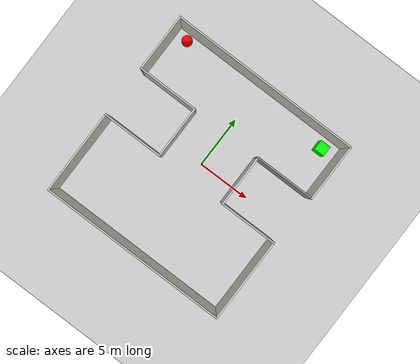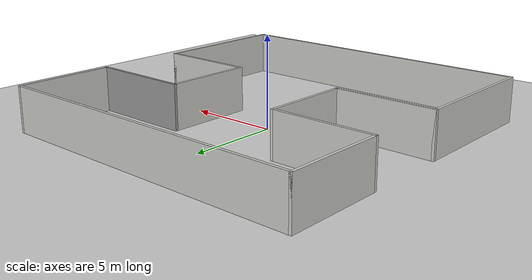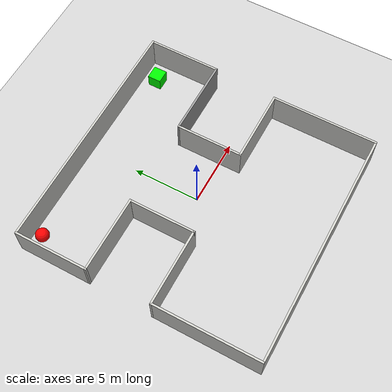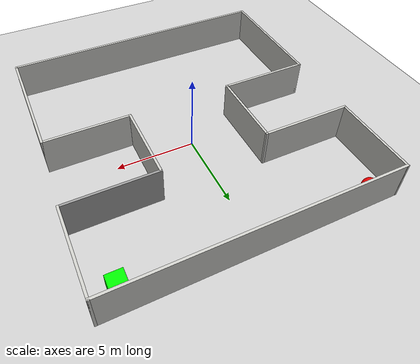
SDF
<sdf version="1.7">
 <world name="default">
  <light name="sun" type="directional">
   <pose>0 0 10 0 -0 0</pose>
   <diffuse>0.8 0.8 0.8 1</diffuse>
   <specular>0.2 0.2 0.2 1</specular>
   <attenuation>
    <range>1000</range>
    <constant>0.9</constant>
    <linear>0.01</linear>
    <quadratic>0.001</quadratic>
   </attenuation>
   <direction>-0.5 0.1 -0.9</direction>
   <spot><inner_angle>0</inner_angle><outer_angle>0</outer_angle><falloff>0</falloff></spot>
  </light>
  <model name="ground_plane">
   <static>1</static>
   <link name="link">
    <collision name="collision">
     <geometry><plane><normal>0 0 1</normal><size>100 100</size></plane></geometry>
     <surface>
      <contact><collide_bitmask>65535</collide_bitmask></contact>
      <friction><ode><mu>100</mu><mu2>50</mu2></ode></friction>
     </surface>
    </collision>
    <visual name="visual">
     <cast_shadows>0</cast_shadows>
     <geometry><plane><normal>0 0 1</normal><size>100 100</size></plane></geometry>
     <material>
      <script><uri>file://media/materials/scripts/gazebo.material</uri><name>Gazebo/Grey</name></script>
     </material>
    </visual>
   </link>
  </model>
  <gravity>0 0 -9.8</gravity>
  <magnetic_field>6e-06 2.3e-05 -4.2e-05</magnetic_field>
  <atmosphere type="adiabatic"/>
  <physics type="ode">
   <max_step_size>0.001</max_step_size>
   <real_time_factor>1</real_time_factor>
   <real_time_update_rate>1000</real_time_update_rate>
  </physics>
  <scene><ambient>0.4 0.4 0.4 1</ambient><background>0.7 0.7 0.7 1</background><shadows>1</shadows></scene>
  <spherical_coordinates>
   <surface_model>EARTH_WGS84</surface_model>
   <latitude_deg>0</latitude_deg>
   <longitude_deg>0</longitude_deg>
   <elevation>0</elevation>
   <heading_deg>0</heading_deg>
  </spherical_coordinates>
  <model name="wide_room">
   <pose>0.075053 -0.383097 0 0 -0 0</pose>
   <link name="Wall_11">
    <collision name="Wall_11_Collision">
     <geometry><box><size>5.75 0.15 2.5</size></box></geometry>
     <pose>0 0 1.25 0 -0 0</pose>
    </collision>
    <visual name="Wall_11_Visual">
     <pose>0 0 1.25 0 -0 0</pose>
     <geometry><box><size>5.75 0.15 2.5</size></box></geometry>
     <material>
      <script><uri>file://media/materials/scripts/gazebo.material</uri><name>Gazebo/CeilingTiled</name></script>
      <ambient>1 1 1 1</ambient>
     </material>
     <meta><layer>0</layer></meta>
    </visual>
    <pose>-6.125 -1.175 0 0 -0 0</pose>
   </link>
   <link name="Wall_12">
    <collision name="Wall_12_Collision">
     <geometry><box><size>5 0.15 2.5</size></box></geometry>
     <pose>0 0 1.25 0 -0 0</pose>
    </collision>
    <visual name="Wall_12_Visual">
     <pose>0 0 1.25 0 -0 0</pose>
     <geometry><box><size>5 0.15 2.5</size></box></geometry>
     <material>
      <script><uri>file://media/materials/scripts/gazebo.material</uri><name>Gazebo/CeilingTiled</name></script>
      <ambient>1 1 1 1</ambient>
     </material>
     <meta><layer>0</layer></meta>
    </visual>
    <pose>-3.325 1.25 0 0 -0 1.5708</pose>
   </link>
   <link name="Wall_13">
    <collision name="Wall_13_Collision">
     <geometry><box><size>5.75 0.15 2.5</size></box></geometry>
     <pose>0 0 1.25 0 -0 0</pose>
    </collision>
    <visual name="Wall_13_Visual">
     <pose>0 0 1.25 0 -0 0</pose>
     <geometry><box><size>5.75 0.15 2.5</size></box></geometry>
     <material>
      <script><uri>file://media/materials/scripts/gazebo.material</uri><name>Gazebo/CeilingTiled</name></script>
      <ambient>1 1 1 1</ambient>
     </material>
     <meta><layer>0</layer></meta>
    </visual>
    <pose>-6.125 3.675 0 0 -0 3.14159</pose>
   </link>
   <link name="Wall_15">
    <collision name="Wall_15_Collision">
     <geometry><box><size>5.5 0.15 2.5</size></box></geometry>
     <pose>0 0 1.25 0 -0 0</pose>
    </collision>
    <visual name="Wall_15_Visual">
     <pose>0 0 1.25 0 -0 0</pose>
     <geometry><box><size>5.5 0.15 2.5</size></box></geometry>
     <material>
      <script><uri>file://media/materials/scripts/gazebo.material</uri><name>Gazebo/CeilingTiled</name></script>
      <ambient>1 1 1 1</ambient>
     </material>
     <meta><layer>0</layer></meta>
    </visual>
    <pose>-8.925 6.35 0 0 -0 1.5708</pose>
   </link>
   <link name="Wall_16">
    <collision name="Wall_16_Collision">
     <geometry><box><size>18 0.15 2.5</size></box></geometry>
     <pose>0 0 1.25 0 -0 0</pose>
    </collision>
    <visual name="Wall_16_Visual">
     <pose>0 0 1.25 0 -0 0</pose>
     <geometry><box><size>18 0.15 2.5</size></box></geometry>
     <material>
      <script><uri>file://media/materials/scripts/gazebo.material</uri><name>Gazebo/CeilingTiled</name></script>
      <ambient>1 1 1 1</ambient>
     </material>
     <meta><layer>0</layer></meta>
    </visual>
    <pose>0 9.025 0 0 -0 0</pose>
   </link>
   <link name="Wall_17">
    <collision name="Wall_17_Collision">
     <geometry><box><size>5.5 0.15 2.5</size></box></geometry>
     <pose>0 0 1.25 0 -0 0</pose>
    </collision>
    <visual name="Wall_17_Visual">
     <pose>0 0 1.25 0 -0 0</pose>
     <geometry><box><size>5.5 0.15 2.5</size></box></geometry>
     <material>
      <script><uri>file://media/materials/scripts/gazebo.material</uri><name>Gazebo/CeilingTiled</name></script>
      <ambient>1 1 1 1</ambient>
     </material>
     <meta><layer>0</layer></meta>
    </visual>
    <pose>8.925 6.35 0 0 -0 -1.5708</pose>
   </link>
   <link name="Wall_18">
    <collision name="Wall_18_Collision">
     <geometry><box><size>5.75 0.15 2.5</size></box></geometry>
     <pose>0 0 1.25 0 -0 0</pose>
    </collision>
    <visual name="Wall_18_Visual">
     <pose>0 0 1.25 0 -0 0</pose>
     <geometry><box><size>5.75 0.15 2.5</size></box></geometry>
     <material>
      <script><uri>file://media/materials/scripts/gazebo.material</uri><name>Gazebo/Grey</name></script>
      <ambient>1 1 1 1</ambient>
     </material>
     <meta><layer>0</layer></meta>
    </visual>
    <pose>6.125 3.675 0 0 -0 3.14159</pose>
   </link>
   <link name="Wall_19">
    <collision name="Wall_19_Collision">
     <geometry><box><size>5 0.15 2.5</size></box></geometry>
     <pose>0 0 1.25 0 -0 0</pose>
    </collision>
    <visual name="Wall_19_Visual">
     <pose>0 0 1.25 0 -0 0</pose>
     <geometry><box><size>5 0.15 2.5</size></box></geometry>
     <material>
      <script><uri>file://media/materials/scripts/gazebo.material</uri><name>Gazebo/CeilingTiled</name></script>
      <ambient>1 1 1 1</ambient>
     </material>
     <meta><layer>0</layer></meta>
    </visual>
    <pose>3.325 1.25 0 0 -0 -1.5708</pose>
   </link>
   <link name="Wall_20">
    <collision name="Wall_20_Collision">
     <geometry><box><size>5.5 0.15 2.5</size></box></geometry>
     <pose>0 0 1.25 0 -0 0</pose>
    </collision>
    <visual name="Wall_20_Visual">
     <pose>0 0 1.25 0 -0 0</pose>
     <geometry><box><size>5.5 0.15 2.5</size></box></geometry>
     <material>
      <script><uri>file://media/materials/scripts/gazebo.material</uri><name>Gazebo/CeilingTiled</name></script>
      <ambient>1 1 1 1</ambient>
     </material>
     <meta><layer>0</layer></meta>
    </visual>
    <pose>6 -1.175 0 0 -0 0</pose>
   </link>
   <link name="Wall_5">
    <collision name="Wall_5_Collision">
     <geometry><box><size>8 0.15 2.5</size></box></geometry>
     <pose>0 0 1.25 0 -0 0</pose>
    </collision>
    <visual name="Wall_5_Visual">
     <pose>0 0 1.25 0 -0 0</pose>
     <geometry><box><size>8 0.15 2.5</size></box></geometry>
     <material>
      <script><uri>file://media/materials/scripts/gazebo.material</uri><name>Gazebo/CeilingTiled</name></script>
      <ambient>1 1 1 1</ambient>
     </material>
     <meta><layer>0</layer></meta>
    </visual>
    <pose>-8.925 -5.1 0 0 -0 -1.5708</pose>
   </link>
   <link name="Wall_6">
    <collision name="Wall_6_Collision">
     <geometry><box><size>17.75 0.15 2.5</size></box></geometry>
     <pose>0 0 1.25 0 -0 0</pose>
    </collision>
    <visual name="Wall_6_Visual">
     <pose>0 0 1.25 0 -0 0</pose>
     <geometry><box><size>17.75 0.15 2.5</size></box></geometry>
     <material>
      <script><uri>file://media/materials/scripts/gazebo.material</uri><name>Gazebo/CeilingTiled</name></script>
      <ambient>1 1 1 1</ambient>
     </material>
     <meta><layer>0</layer></meta>
    </visual>
    <pose>-0.125 -9.025 0 0 -0 0</pose>
   </link>
   <link name="Wall_7">
    <collision name="Wall_7_Collision">
     <geometry><box><size>8 0.15 2.5</size></box></geometry>
     <pose>0 0 1.25 0 -0 0</pose>
    </collision>
    <visual name="Wall_7_Visual">
     <pose>0 0 1.25 0 -0 0</pose>
     <geometry><box><size>8 0.15 2.5</size></box></geometry>
     <material>
      <script><uri>file://media/materials/scripts/gazebo.material</uri><name>Gazebo/CeilingTiled</name></script>
      <ambient>1 1 1 1</ambient>
     </material>
     <meta><layer>0</layer></meta>
    </visual>
    <pose>8.675 -5.1 0 0 -0 1.5708</pose>
   </link>
   <static>1</static>
  </model>
  <model name="green_box">
   <link name="link">
    <inertial>
     <mass>1</mass>
     <inertia>
      <ixx>0.166667</ixx>
      <ixy>0</ixy>
      <ixz>0</ixz>
      <iyy>0.166667</iyy>
      <iyz>0</iyz>
      <izz>0.166667</izz>
     </inertia>
    </inertial>
    <visual name="visual">
     <geometry><box><size>1 1 1</size></box></geometry>
     <material>
      <script><name>Gazebo/Grey</name><uri>file://media/materials/scripts/gazebo.material</uri></script>
      <shader type="pixel"><normal_map>__default__</normal_map></shader>
      <diffuse>0 1 0 0</diffuse>
      <ambient>0.3 0.3 0.3 1</ambient>
      <specular>0 0 0 1</specular>
      <emissive>0 0 0 1</emissive>
     </material>
    </visual>
    <collision name="collision">
     <geometry><box><size>1 1 1</size></box></geometry>
     <surface>
      <friction>
       <ode><mu>1</mu><mu2>1</mu2><fdir1>0 0 0</fdir1><slip1>0</slip1><slip2>0</slip2></ode>
       <torsional>
        <coefficient>1</coefficient>
        <patch_radius>0</patch_radius>
        <surface_radius>0</surface_radius>
        <use_patch_radius>1</use_patch_radius>
        <ode><slip>0</slip></ode>
       </torsional>
      </friction>
      <bounce><restitution_coefficient>0</restitution_coefficient><threshold>1e+06</threshold></bounce>
      <contact>
       <collide_without_contact>0</collide_without_contact>
       <collide_without_contact_bitmask>1</collide_without_contact_bitmask>
       <collide_bitmask>1</collide_bitmask>
       <ode>
        <soft_cfm>0</soft_cfm>
        <soft_erp>0.2</soft_erp>
        <kp>1e+13</kp>
        <kd>1</kd>
        <max_vel>0.01</max_vel>
        <min_depth>0</min_depth>
       </ode>
       <bullet>
        <split_impulse>1</split_impulse>
        <split_impulse_penetration_threshold>-0.01</split_impulse_penetration_threshold>
        <soft_cfm>0</soft_cfm>
        <soft_erp>0.2</soft_erp>
        <kp>1e+13</kp>
        <kd>1</kd>
       </bullet>
      </contact>
     </surface>
    </collision>
   </link>
   <static>0</static>
   <pose>7.4823 7.48096 0.5 0 -0 0</pose>
  </model>
  <model name="red_sphere">
   <link name="link">
    <inertial>
     <mass>1</mass>
     <inertia><ixx>0.1</ixx><ixy>0</ixy><ixz>0</ixz><iyy>0.1</iyy><iyz>0</iyz><izz>0.1</izz></inertia>
    </inertial>
    <visual name="visual">
     <geometry><sphere><radius>0.5</radius></sphere></geometry>
     <material>
      <script><name>Gazebo/Grey</name><uri>file://media/materials/scripts/gazebo.material</uri></script>
      <shader type="pixel"><normal_map>__default__</normal_map></shader>
      <ambient>1 0 0 0</ambient>
      <diffuse>1 0 0 0</diffuse>
      <specular>0.01 0.01 0.01 1</specular>
      <emissive>0 0 0 1</emissive>
     </material>
    </visual>
    <collision name="collision">
     <geometry><sphere><radius>0.5</radius></sphere></geometry>
     <surface>
      <friction>
       <ode><mu>1</mu><mu2>1</mu2><fdir1>0 0 0</fdir1><slip1>0</slip1><slip2>0</slip2></ode>
       <torsional>
        <coefficient>1</coefficient>
        <patch_radius>0</patch_radius>
        <surface_radius>0</surface_radius>
        <use_patch_radius>1</use_patch_radius>
        <ode><slip>0</slip></ode>
       </torsional>
      </friction>
      <bounce><restitution_coefficient>0</restitution_coefficient><threshold>1e+06</threshold></bounce>
      <contact>
       <collide_without_contact>0</collide_without_contact>
       <collide_without_contact_bitmask>1</collide_without_contact_bitmask>
       <collide_bitmask>1</collide_bitmask>
       <ode>
        <soft_cfm>0</soft_cfm>
        <soft_erp>0.2</soft_erp>
        <kp>1e+13</kp>
        <kd>1</kd>
        <max_vel>0.01</max_vel>
        <min_depth>0</min_depth>
       </ode>
       <bullet>
        <split_impulse>1</split_impulse>
        <split_impulse_penetration_threshold>-0.01</split_impulse_penetration_threshold>
        <soft_cfm>0</soft_cfm>
        <soft_erp>0.2</soft_erp>
        <kp>1e+13</kp>
        <kd>1</kd>
       </bullet>
      </contact>
     </surface>
    </collision>
   </link>
   <static>0</static>
   <pose>-7.58423 7.84232 0.5 0 -0 0</pose>
  </model>
 </world>
</sdf>
